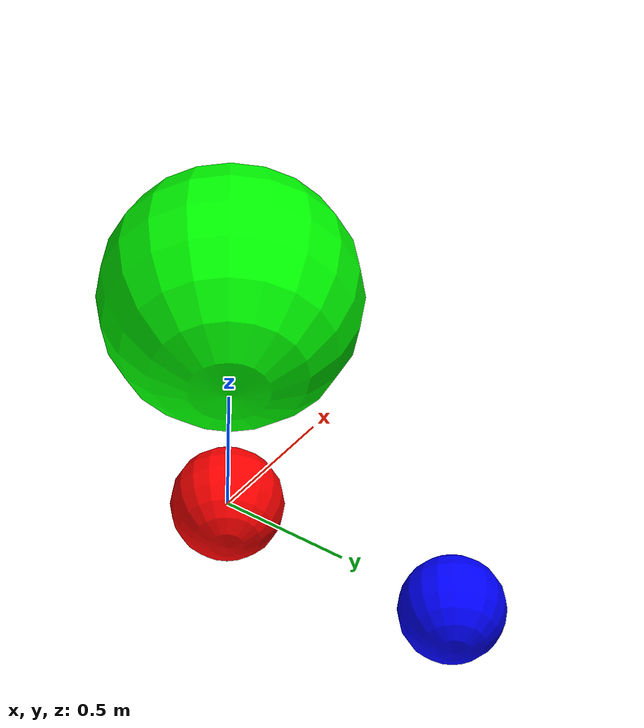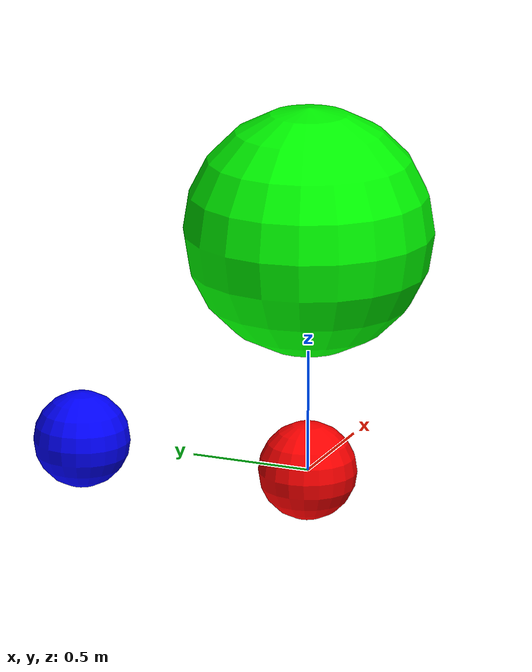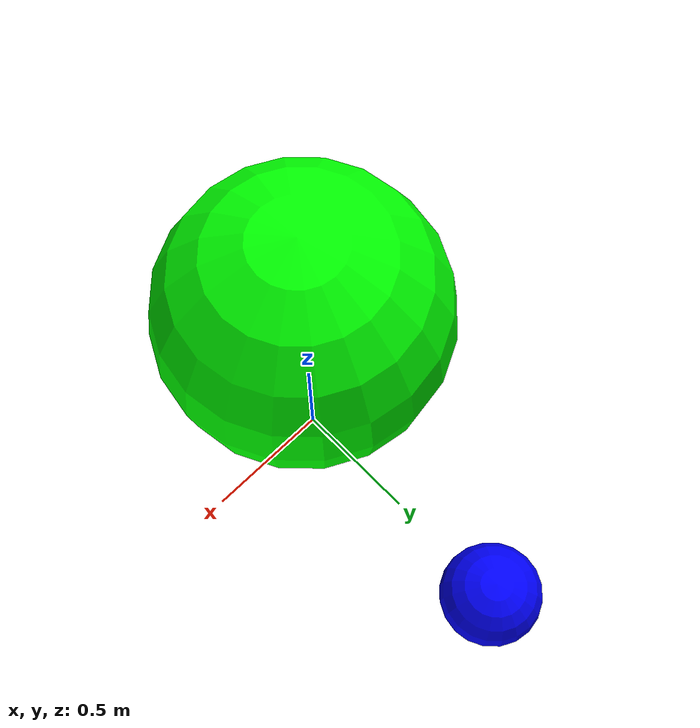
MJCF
<!-- This model is for test mjcf parser -->
<mujoco model="static scene">

    <default>
        <default class="sphere">
            <geom type="sphere" size="0.2"/>
            <default class="red_sphere">
                <geom rgba="1 0 0 1"/>
            </default>
            <default class="green_sphere">
                <geom rgba="0 1 0 1"/>
            </default>
            <default class="blue_sphere">
                <geom rgba="0 0 1 1"/>
            </default>
        </default>
    </default>

    <worldbody>
        <geom class="red_sphere" pos="0 0 0"/>
        <body name="body_0">
            <geom class="blue_sphere" pos="0 1 0"/>
            <include file="included_scene.xml"/>
        </body>
    </worldbody>

</mujoco>

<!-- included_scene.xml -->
<mujoco model="included_scene">

    <body>
        <geom class="green_sphere" size="0.5" pos="0 0 1"/>
    </body>

</mujoco>
